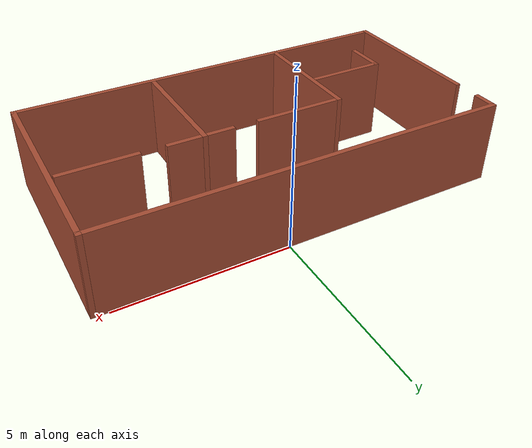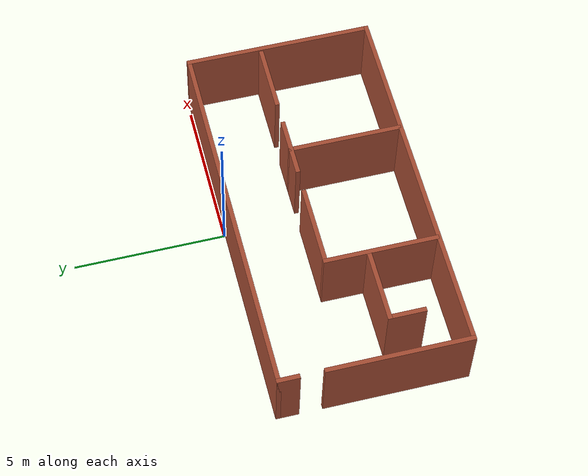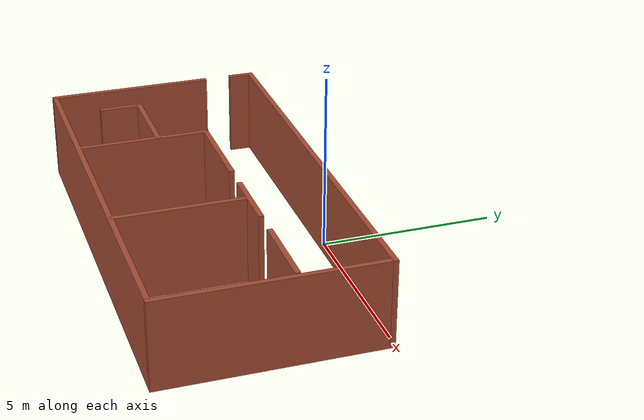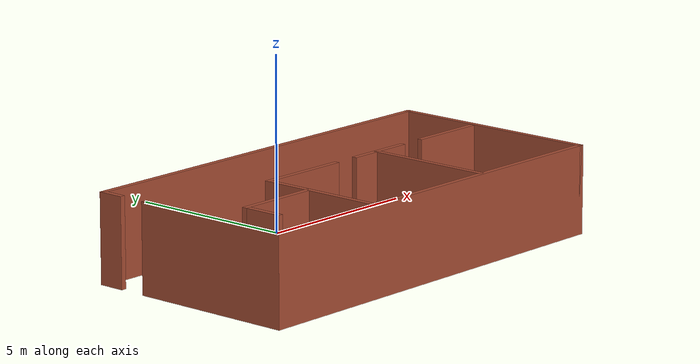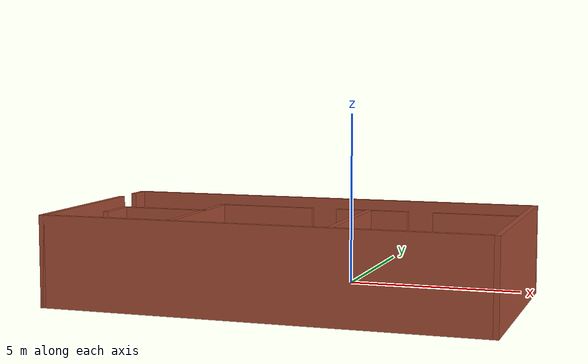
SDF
<?xml version='1.0'?>
<sdf version='1.6'>
  <model name='p3afp'>
    <pose frame=''>-0.672362 -3.15534 0 0 -0 0</pose>
    <link name='Wall_0'>
      <collision name='Wall_0_Collision'>
        <geometry>
          <box>
            <size>4.75 0.15 2.5</size>
          </box>
        </geometry>
        <pose frame=''>0 0 1.25 0 -0 0</pose>
      </collision>
      <visual name='Wall_0_Visual'>
        <pose frame=''>0 0 1.25 0 -0 0</pose>
        <geometry>
          <box>
            <size>4.75 0.15 2.5</size>
          </box>
        </geometry>
        <material>
          <script>
            <uri>file://media/materials/scripts/gazebo.material</uri>
            <name>Gazebo/Bricks</name>
          </script>
          <ambient>1 1 1 1</ambient>
        </material>
        <meta>
          <layer>0</layer>
        </meta>
      </visual>
      <pose frame=''>-6.05 -0.75 0 0 -0 -1.5708</pose>
    </link>
    <link name='Wall_1'>
      <collision name='Wall_1_Collision'>
        <geometry>
          <box>
            <size>12.25 0.15 2.5</size>
          </box>
        </geometry>
        <pose frame=''>0 0 1.25 0 -0 0</pose>
      </collision>
      <visual name='Wall_1_Visual'>
        <pose frame=''>0 0 1.25 0 -0 0</pose>
        <geometry>
          <box>
            <size>12.25 0.15 2.5</size>
          </box>
        </geometry>
        <material>
          <script>
            <uri>file://media/materials/scripts/gazebo.material</uri>
            <name>Gazebo/Bricks</name>
          </script>
          <ambient>1 1 1 1</ambient>
        </material>
        <meta>
          <layer>0</layer>
        </meta>
      </visual>
      <pose frame=''>0 -3.05 0 0 -0 0</pose>
    </link>
    <link name='Wall_11'>
      <collision name='Wall_11_Collision'>
        <geometry>
          <box>
            <size>2.25 0.15 2.5</size>
          </box>
        </geometry>
        <pose frame=''>0 0 1.25 0 -0 0</pose>
      </collision>
      <visual name='Wall_11_Visual'>
        <pose frame=''>0 0 1.25 0 -0 0</pose>
        <geometry>
          <box>
            <size>2.25 0.15 2.5</size>
          </box>
        </geometry>
        <material>
          <script>
            <uri>file://media/materials/scripts/gazebo.material</uri>
            <name>Gazebo/Bricks</name>
          </script>
          <ambient>1 1 1 1</ambient>
        </material>
        <meta>
          <layer>0</layer>
        </meta>
      </visual>
      <pose frame=''>4.81067 0.624446 0 0 -0 0</pose>
    </link>
    <link name='Wall_13'>
      <collision name='Wall_13_Collision'>
        <geometry>
          <box>
            <size>3.75 0.15 2.5</size>
          </box>
        </geometry>
        <pose frame=''>0 0 1.25 0 -0 0</pose>
      </collision>
      <visual name='Wall_13_Visual'>
        <pose frame=''>0 0 1.25 0 -0 0</pose>
        <geometry>
          <box>
            <size>3.75 0.15 2.5</size>
          </box>
        </geometry>
        <material>
          <script>
            <uri>file://media/materials/scripts/gazebo.material</uri>
            <name>Gazebo/Bricks</name>
          </script>
          <ambient>1 1 1 1</ambient>
        </material>
        <meta>
          <layer>0</layer>
        </meta>
      </visual>
      <pose frame=''>1.89486 -1.17522 0 0 -0 -1.5708</pose>
    </link>
    <link name='Wall_17'>
      <collision name='Wall_17_Collision'>
        <geometry>
          <box>
            <size>1.25 0.15 2.5</size>
          </box>
        </geometry>
        <pose frame=''>0 0 1.25 0 -0 0</pose>
      </collision>
      <visual name='Wall_17_Visual'>
        <pose frame=''>0 0 1.25 0 -0 0</pose>
        <geometry>
          <box>
            <size>1.25 0.15 2.5</size>
          </box>
        </geometry>
        <material>
          <script>
            <uri>file://media/materials/scripts/gazebo.material</uri>
            <name>Gazebo/Bricks</name>
          </script>
          <ambient>1 1 1 1</ambient>
        </material>
        <meta>
          <layer>0</layer>
        </meta>
      </visual>
      <pose frame=''>-4.76273 -1.31931 0 0 -0 1.5708</pose>
    </link>
    <link name='Wall_18'>
      <collision name='Wall_18_Collision'>
        <geometry>
          <box>
            <size>2.5 0.15 2.5</size>
          </box>
        </geometry>
        <pose frame=''>0 0 1.25 0 -0 0</pose>
      </collision>
      <visual name='Wall_18_Visual'>
        <pose frame=''>0 0 1.25 0 -0 0</pose>
        <geometry>
          <box>
            <size>2.5 0.15 2.5</size>
          </box>
        </geometry>
        <material>
          <script>
            <uri>file://media/materials/scripts/gazebo.material</uri>
            <name>Gazebo/Bricks</name>
          </script>
          <ambient>1 1 1 1</ambient>
        </material>
        <meta>
          <layer>0</layer>
        </meta>
      </visual>
      <pose frame=''>-3.58773 -0.769307 0 0 -0 0</pose>
    </link>
    <link name='Wall_2'>
      <collision name='Wall_2_Collision'>
        <geometry>
          <box>
            <size>6.25 0.15 2.5</size>
          </box>
        </geometry>
        <pose frame=''>0 0 1.25 0 -0 0</pose>
      </collision>
      <visual name='Wall_2_Visual'>
        <pose frame=''>0 0 1.25 0 -0 0</pose>
        <geometry>
          <box>
            <size>6.25 0.15 2.5</size>
          </box>
        </geometry>
        <material>
          <script>
            <uri>file://media/materials/scripts/gazebo.material</uri>
            <name>Gazebo/Bricks</name>
          </script>
          <ambient>1 1 1 1</ambient>
        </material>
        <meta>
          <layer>0</layer>
        </meta>
      </visual>
      <pose frame=''>6.05 0 0 0 -0 1.5708</pose>
    </link>
    <link name='Wall_3'>
      <collision name='Wall_3_Collision'>
        <geometry>
          <box>
            <size>12.25 0.15 2.5</size>
          </box>
        </geometry>
        <pose frame=''>0 0 1.25 0 -0 0</pose>
      </collision>
      <visual name='Wall_3_Visual'>
        <pose frame=''>0 0 1.25 0 -0 0</pose>
        <geometry>
          <box>
            <size>12.25 0.15 2.5</size>
          </box>
        </geometry>
        <material>
          <script>
            <uri>file://media/materials/scripts/gazebo.material</uri>
            <name>Gazebo/Bricks</name>
          </script>
          <ambient>1 1 1 1</ambient>
        </material>
        <meta>
          <layer>0</layer>
        </meta>
      </visual>
      <pose frame=''>0 3.05 0 0 -0 3.14159</pose>
    </link>
    <link name='Wall_4'>
      <collision name='Wall_4_Collision'>
        <geometry>
          <box>
            <size>0.75 0.15 2.5</size>
          </box>
        </geometry>
        <pose frame=''>0 0 1.25 0 -0 0</pose>
      </collision>
      <visual name='Wall_4_Visual'>
        <pose frame=''>0 0 1.25 0 -0 0</pose>
        <geometry>
          <box>
            <size>0.75 0.15 2.5</size>
          </box>
        </geometry>
        <material>
          <script>
            <uri>file://media/materials/scripts/gazebo.material</uri>
            <name>Gazebo/Bricks</name>
          </script>
          <ambient>1 1 1 1</ambient>
        </material>
        <meta>
          <layer>0</layer>
        </meta>
      </visual>
      <pose frame=''>-6.05 2.75 0 0 -0 -1.5708</pose>
    </link>
    <link name='Wall_6'>
      <collision name='Wall_6_Collision'>
        <geometry>
          <box>
            <size>3.75 0.15 2.5</size>
          </box>
        </geometry>
        <pose frame=''>0 0 1.25 0 -0 0</pose>
      </collision>
      <visual name='Wall_6_Visual'>
        <pose frame=''>0 0 1.25 0 -0 0</pose>
        <geometry>
          <box>
            <size>3.75 0.15 2.5</size>
          </box>
        </geometry>
        <material>
          <script>
            <uri>file://media/materials/scripts/gazebo.material</uri>
            <name>Gazebo/Bricks</name>
          </script>
          <ambient>1 1 1 1</ambient>
        </material>
        <meta>
          <layer>0</layer>
        </meta>
      </visual>
      <pose frame=''>-2.38933 -1.17555 0 0 -0 1.5708</pose>
    </link>
    <link name='Wall_7'>
      <collision name='Wall_7_Collision'>
        <geometry>
          <box>
            <size>2.75 0.15 2.5</size>
          </box>
        </geometry>
        <pose frame=''>0 0 1.25 0 -0 0</pose>
      </collision>
      <visual name='Wall_7_Visual'>
        <pose frame=''>0 0 1.25 0 -0 0</pose>
        <geometry>
          <box>
            <size>2.75 0.15 2.5</size>
          </box>
        </geometry>
        <material>
          <script>
            <uri>file://media/materials/scripts/gazebo.material</uri>
            <name>Gazebo/Bricks</name>
          </script>
          <ambient>1 1 1 1</ambient>
        </material>
        <meta>
          <layer>0</layer>
        </meta>
      </visual>
      <pose frame=''>-1.08933 0.624446 0 0 -0 0</pose>
    </link>
    <link name='Wall_9'>
      <collision name='Wall_9_Collision'>
        <geometry>
          <box>
            <size>2 0.15 2.5</size>
          </box>
        </geometry>
        <pose frame=''>0 0 1.25 0 -0 0</pose>
      </collision>
      <visual name='Wall_9_Visual'>
        <pose frame=''>0 0 1.25 0 -0 0</pose>
        <geometry>
          <box>
            <size>2 0.15 2.5</size>
          </box>
        </geometry>
        <material>
          <script>
            <uri>file://media/materials/scripts/gazebo.material</uri>
            <name>Gazebo/Bricks</name>
          </script>
          <ambient>1 1 1 1</ambient>
        </material>
        <meta>
          <layer>0</layer>
        </meta>
      </visual>
      <pose frame=''>1.98567 0.624446 0 0 -0 0</pose>
    </link>
    <static>1</static>
  </model>
</sdf>
